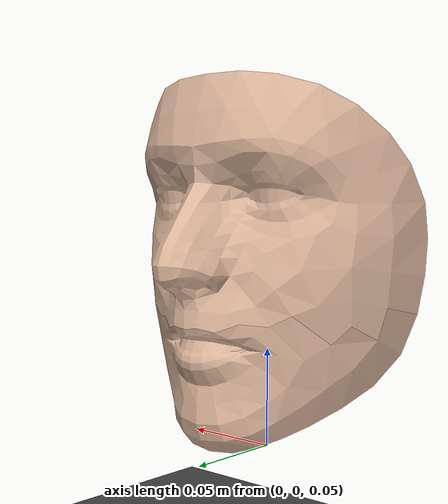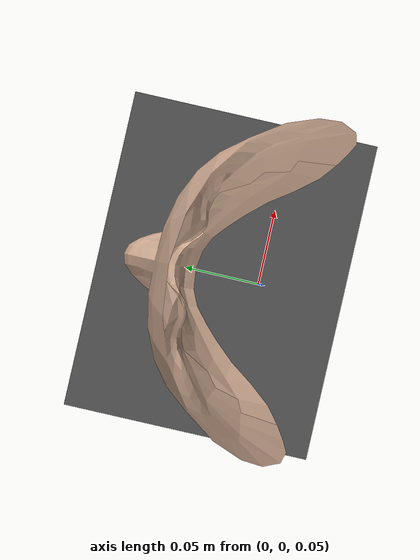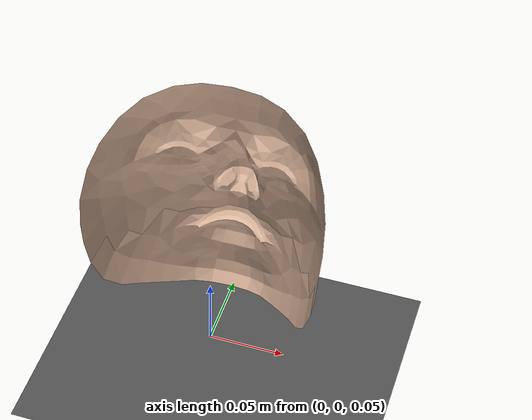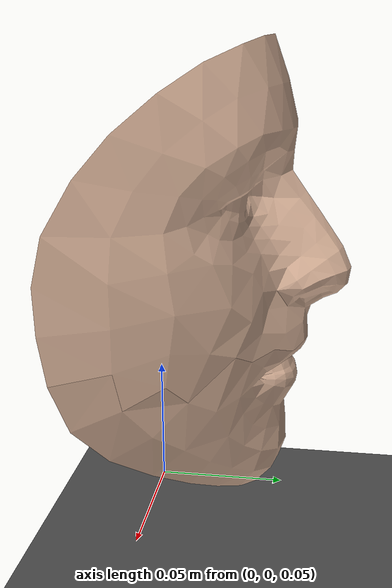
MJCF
<mujoco model="animatronic_skull">
  <compiler angle="radian" meshdir="."/>

  <asset>
    <!-- We load the perfectly beautiful canonical face mesh, split into upper and lower -->
    <!-- The mesh is about 17 units tall. We scale by 0.01 to make it ~17cm -->
    <mesh name="upper_face" file="beautiful_upper_face.obj" scale="0.01 0.01 0.01"/>
    <mesh name="lower_jaw" file="beautiful_lower_jaw.obj" scale="0.01 0.01 0.01"/>
  </asset>

  <worldbody>
    <!-- Proper ambient lighting -->
    <light pos="0 -2 5" dir="0 1 -1" diffuse="1 1 1" ambient="0.6 0.6 0.6"/>
    <geom type="plane" size="10 10 0.1" rgba="0.3 0.3 0.3 1" contype="1" conaffinity="1"/>

    <!-- Rotated -90 degrees on X to stand upright, and 180 degrees on Z to face the camera -->
    <body name="skull_assembly" pos="0 0 0.15" euler="-1.5708 0 3.14159">

      <!-- The upper face -->
      <geom type="mesh" mesh="upper_face" rgba="0.85 0.7 0.6 1" contype="0" conaffinity="0"/>

      <!-- Moving jaw -->
      <body name="jaw" pos="0 0 0">
        <!-- The hinge joint acts as the pivot for the jaw opening -->
        <!-- Pivot should be roughly at the ears: X=0, Y=0, Z=-0.02 (scaled by 0.01, so -2 in mesh coords) -->
        <!-- Based on bounds, Y=-9 is bottom, Y=8 is top, Z=-2 is back, Z=7 is front. -->
        <joint name="jaw_joint" type="hinge" pos="0 0 -0.02" axis="1 0 0" range="-0.2 0.5" damping="1.0" frictionloss="0.1"/>
        <geom type="mesh" mesh="lower_jaw" rgba="0.85 0.7 0.6 1" contype="0" conaffinity="0"/>
      </body>
    </body>
  </worldbody>

  <actuator>
    <position name="jaw_motor" joint="jaw_joint" kp="100"/>
  </actuator>
</mujoco>
